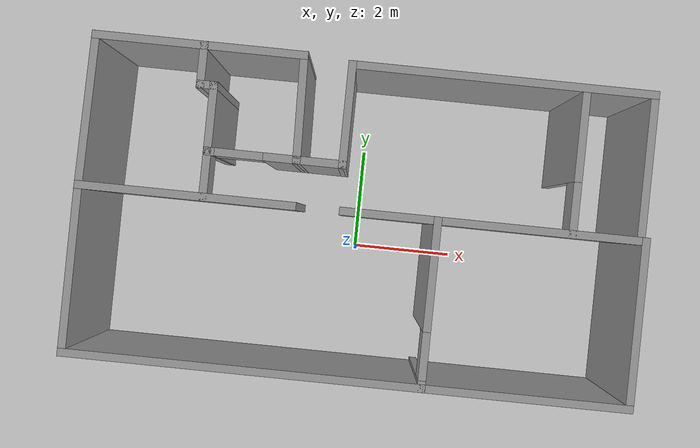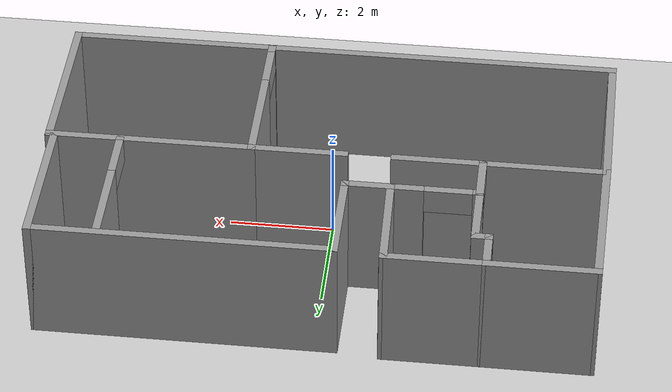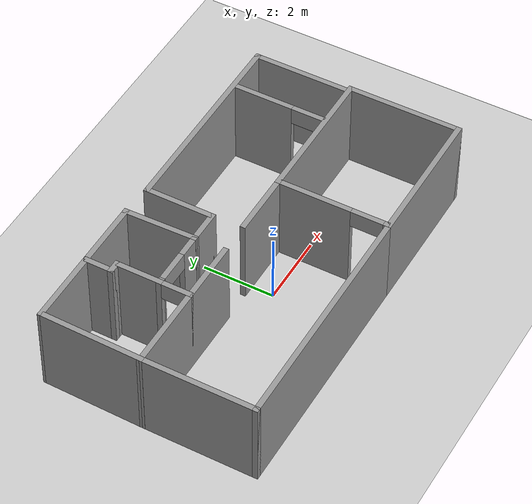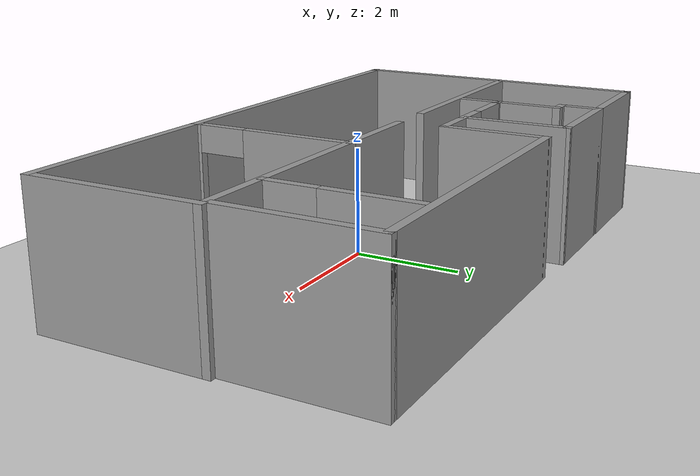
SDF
<sdf version="1.7">
 <world name="default">
  <light name="sun" type="directional">
   <pose>0 0 10 0 -0 0</pose>
   <diffuse>0.8 0.8 0.8 1</diffuse>
   <specular>0.2 0.2 0.2 1</specular>
   <attenuation>
    <range>1000</range>
    <constant>0.9</constant>
    <linear>0.01</linear>
    <quadratic>0.001</quadratic>
   </attenuation>
   <direction>-0.5 0.1 -0.9</direction>
   <spot><inner_angle>0</inner_angle><outer_angle>0</outer_angle><falloff>0</falloff></spot>
  </light>
  <model name="ground_plane">
   <static>1</static>
   <link name="link">
    <collision name="collision">
     <geometry><plane><normal>0 0 1</normal><size>100 100</size></plane></geometry>
     <surface>
      <contact><collide_bitmask>65535</collide_bitmask></contact>
      <friction><ode><mu>100</mu><mu2>50</mu2></ode></friction>
     </surface>
    </collision>
    <visual name="visual">
     <cast_shadows>0</cast_shadows>
     <geometry><plane><normal>0 0 1</normal><size>100 100</size></plane></geometry>
     <material>
      <script><uri>file://media/materials/scripts/gazebo.material</uri><name>Gazebo/Grey</name></script>
     </material>
    </visual>
   </link>
  </model>
  <gravity>0 0 -9.8</gravity>
  <magnetic_field>6e-06 2.3e-05 -4.2e-05</magnetic_field>
  <atmosphere type="adiabatic"/>
  <physics type="ode">
   <max_step_size>0.001</max_step_size>
   <real_time_factor>1</real_time_factor>
   <real_time_update_rate>1000</real_time_update_rate>
  </physics>
  <scene><ambient>0.4 0.4 0.4 1</ambient><background>0.7 0.7 0.7 1</background><shadows>1</shadows></scene>
  <spherical_coordinates>
   <surface_model>EARTH_WGS84</surface_model>
   <latitude_deg>0</latitude_deg>
   <longitude_deg>0</longitude_deg>
   <elevation>0</elevation>
   <heading_deg>0</heading_deg>
  </spherical_coordinates>
  <model name="living_room">
   <pose>0.066661 0.820114 0 0 -0 0</pose>
   <link name="Wall_10">
    <collision name="Wall_10_Collision">
     <geometry><box><size>4.1 0.15 2.5</size></box></geometry>
     <pose>0 0 1.25 0 -0 0</pose>
    </collision>
    <visual name="Wall_10_Visual">
     <pose>0 0 1.25 0 -0 0</pose>
     <geometry><box><size>4.1 0.15 2.5</size></box></geometry>
     <material>
      <script><uri>file://media/materials/scripts/gazebo.material</uri><name>Gazebo/Grey</name></script>
      <ambient>1 1 1 1</ambient>
     </material>
     <meta><layer>0</layer></meta>
    </visual>
    <pose>-3.27433 -0.1475 0 0 -0 0</pose>
   </link>
   <link name="Wall_17">
    <collision name="Wall_17_Collision">
     <geometry><box><size>6.8 0.15 2.5</size></box></geometry>
     <pose>0 0 1.25 0 -0 0</pose>
    </collision>
    <visual name="Wall_17_Visual">
     <pose>0 0 1.25 0 -0 0</pose>
     <geometry><box><size>6.8 0.15 2.5</size></box></geometry>
     <material>
      <script><uri>file://media/materials/scripts/gazebo.material</uri><name>Gazebo/Grey</name></script>
      <ambient>1 1 1 1</ambient>
     </material>
     <meta><layer>0</layer></meta>
    </visual>
    <pose>-1.92433 -3.2475 0 0 -0 0</pose>
   </link>
   <link name="Wall_20">
    <pose>1.40067 -1.6975 0 0 -0 1.5708</pose>
    <visual name="Wall_20_Visual_0">
     <pose>-1.5175 0 1.25 0 -0 0</pose>
     <geometry><box><size>0.215 0.15 2.5</size></box></geometry>
     <material>
      <script><uri>file://media/materials/scripts/gazebo.material</uri><name>Gazebo/Grey</name></script>
      <ambient>1 1 1 1</ambient>
     </material>
     <meta><layer>0</layer></meta>
    </visual>
    <collision name="Wall_20_Collision_0">
     <geometry><box><size>0.215 0.15 2.5</size></box></geometry>
     <pose>-1.5175 0 1.25 0 -0 0</pose>
    </collision>
    <visual name="Wall_20_Visual_1">
     <pose>0.5575 0 1.25 0 -0 0</pose>
     <geometry><box><size>2.135 0.15 2.5</size></box></geometry>
     <material>
      <script><uri>file://media/materials/scripts/gazebo.material</uri><name>Gazebo/Grey</name></script>
      <ambient>1 1 1 1</ambient>
     </material>
     <meta><layer>0</layer></meta>
    </visual>
    <collision name="Wall_20_Collision_1">
     <geometry><box><size>2.135 0.15 2.5</size></box></geometry>
     <pose>0.5575 0 1.25 0 -0 0</pose>
    </collision>
    <visual name="Wall_20_Visual_2">
     <pose>-0.96 0 2.25 0 -0 0</pose>
     <geometry><box><size>0.9 0.15 0.5</size></box></geometry>
     <material>
      <script><uri>file://media/materials/scripts/gazebo.material</uri><name>Gazebo/Grey</name></script>
      <ambient>1 1 1 1</ambient>
     </material>
     <meta><layer>0</layer></meta>
    </visual>
    <collision name="Wall_20_Collision_2">
     <geometry><box><size>0.9 0.15 0.5</size></box></geometry>
     <pose>-0.96 0 2.25 0 -0 0</pose>
    </collision>
   </link>
   <link name="Wall_21">
    <collision name="Wall_21_Collision">
     <geometry><box><size>1.9 0.15 2.5</size></box></geometry>
     <pose>0 0 1.25 0 -0 0</pose>
    </collision>
    <visual name="Wall_21_Visual">
     <pose>0 0 1.25 0 -0 0</pose>
     <geometry><box><size>1.9 0.15 2.5</size></box></geometry>
     <material>
      <script><uri>file://media/materials/scripts/gazebo.material</uri><name>Gazebo/Grey</name></script>
      <ambient>1 1 1 1</ambient>
     </material>
     <meta><layer>0</layer></meta>
    </visual>
    <pose>0.525668 -0.1475 0 0 -0 3.14159</pose>
   </link>
   <link name="Wall_23">
    <collision name="Wall_23_Collision">
     <geometry><box><size>4 0.15 2.5</size></box></geometry>
     <pose>0 0 1.25 0 -0 0</pose>
    </collision>
    <visual name="Wall_23_Visual">
     <pose>0 0 1.25 0 -0 0</pose>
     <geometry><box><size>4 0.15 2.5</size></box></geometry>
     <material>
      <script><uri>file://media/materials/scripts/gazebo.material</uri><name>Gazebo/Grey</name></script>
      <ambient>1 1 1 1</ambient>
     </material>
     <meta><layer>0</layer></meta>
    </visual>
    <pose>3.32567 -3.2475 0 0 -0 0</pose>
   </link>
   <link name="Wall_24">
    <collision name="Wall_24_Collision">
     <geometry><box><size>3.25 0.15 2.5</size></box></geometry>
     <pose>0 0 1.25 0 -0 0</pose>
    </collision>
    <visual name="Wall_24_Visual">
     <pose>0 0 1.25 0 -0 0</pose>
     <geometry><box><size>3.25 0.15 2.5</size></box></geometry>
     <material>
      <script><uri>file://media/materials/scripts/gazebo.material</uri><name>Gazebo/Grey</name></script>
      <ambient>1 1 1 1</ambient>
     </material>
     <meta><layer>0</layer></meta>
    </visual>
    <pose>5.25067 -1.6975 0 0 -0 1.5708</pose>
   </link>
   <link name="Wall_25">
    <collision name="Wall_25_Collision">
     <geometry><box><size>4 0.15 2.5</size></box></geometry>
     <pose>0 0 1.25 0 -0 0</pose>
    </collision>
    <visual name="Wall_25_Visual">
     <pose>0 0 1.25 0 -0 0</pose>
     <geometry><box><size>4 0.15 2.5</size></box></geometry>
     <material>
      <script><uri>file://media/materials/scripts/gazebo.material</uri><name>Gazebo/Grey</name></script>
      <ambient>1 1 1 1</ambient>
     </material>
     <meta><layer>0</layer></meta>
    </visual>
    <pose>3.32567 -0.1475 0 0 -0 3.14159</pose>
   </link>
   <link name="Wall_33">
    <pose>-2.12433 0.7025 0 0 -0 3.14159</pose>
    <visual name="Wall_33_Visual_0">
     <pose>-0.551716 0 1.25 0 -0 0</pose>
     <geometry><box><size>0.696567 0.15 2.5</size></box></geometry>
     <material>
      <script><uri>file://media/materials/scripts/gazebo.material</uri><name>Gazebo/Grey</name></script>
      <ambient>1 1 1 1</ambient>
     </material>
     <meta><layer>0</layer></meta>
    </visual>
    <collision name="Wall_33_Collision_0">
     <geometry><box><size>0.696567 0.15 2.5</size></box></geometry>
     <pose>-0.551716 0 1.25 0 -0 0</pose>
    </collision>
    <visual name="Wall_33_Visual_1">
     <pose>0.798284 0 1.25 0 -0 0</pose>
     <geometry><box><size>0.203433 0.15 2.5</size></box></geometry>
     <material>
      <script><uri>file://media/materials/scripts/gazebo.material</uri><name>Gazebo/Grey</name></script>
      <ambient>1 1 1 1</ambient>
     </material>
     <meta><layer>0</layer></meta>
    </visual>
    <collision name="Wall_33_Collision_1">
     <geometry><box><size>0.203433 0.15 2.5</size></box></geometry>
     <pose>0.798284 0 1.25 0 -0 0</pose>
    </collision>
    <visual name="Wall_33_Visual_2">
     <pose>0.246567 0 2.25 0 -0 0</pose>
     <geometry><box><size>0.9 0.15 0.5</size></box></geometry>
     <material>
      <script><uri>file://media/materials/scripts/gazebo.material</uri><name>Gazebo/Grey</name></script>
      <ambient>1 1 1 1</ambient>
     </material>
     <meta><layer>0</layer></meta>
    </visual>
    <collision name="Wall_33_Collision_2">
     <geometry><box><size>0.9 0.15 0.5</size></box></geometry>
     <pose>0.246567 0 2.25 0 -0 0</pose>
    </collision>
   </link>
   <link name="Wall_35">
    <pose>-2.94933 0.2775 0 0 -0 -1.5708</pose>
    <visual name="Wall_35_Visual_0">
     <pose>-0.477932 0 1.25 0 -0 0</pose>
     <geometry><box><size>0.044137 0.15 2.5</size></box></geometry>
     <material>
      <script><uri>file://media/materials/scripts/gazebo.material</uri><name>Gazebo/Grey</name></script>
      <ambient>1 1 1 1</ambient>
     </material>
     <meta><layer>0</layer></meta>
    </visual>
    <collision name="Wall_35_Collision_0">
     <geometry><box><size>0.044137 0.15 2.5</size></box></geometry>
     <pose>-0.477932 0 1.25 0 -0 0</pose>
    </collision>
    <visual name="Wall_35_Visual_1">
     <pose>0.472068 0 1.25 0 -0 0</pose>
     <geometry><box><size>0.055863 0.15 2.5</size></box></geometry>
     <material>
      <script><uri>file://media/materials/scripts/gazebo.material</uri><name>Gazebo/Grey</name></script>
      <ambient>1 1 1 1</ambient>
     </material>
     <meta><layer>0</layer></meta>
    </visual>
    <collision name="Wall_35_Collision_1">
     <geometry><box><size>0.055863 0.15 2.5</size></box></geometry>
     <pose>0.472068 0 1.25 0 -0 0</pose>
    </collision>
    <visual name="Wall_35_Visual_2">
     <pose>-0.005863 0 2.25 0 -0 0</pose>
     <geometry><box><size>0.9 0.15 0.5</size></box></geometry>
     <material>
      <script><uri>file://media/materials/scripts/gazebo.material</uri><name>Gazebo/Grey</name></script>
      <ambient>1 1 1 1</ambient>
     </material>
     <meta><layer>0</layer></meta>
    </visual>
    <collision name="Wall_35_Collision_2">
     <geometry><box><size>0.9 0.15 0.5</size></box></geometry>
     <pose>-0.005863 0 2.25 0 -0 0</pose>
    </collision>
   </link>
   <link name="Wall_38">
    <collision name="Wall_38_Collision">
     <geometry><box><size>1.36 0.15 2.5</size></box></geometry>
     <pose>0 0 1.25 0 -0 0</pose>
    </collision>
    <visual name="Wall_38_Visual">
     <pose>0 0 1.25 0 -0 0</pose>
     <geometry><box><size>1.36 0.15 2.5</size></box></geometry>
     <material>
      <script><uri>file://media/materials/scripts/gazebo.material</uri><name>Gazebo/Grey</name></script>
      <ambient>1 1 1 1</ambient>
     </material>
     <meta><layer>0</layer></meta>
    </visual>
    <pose>-2.94933 1.3075 0 0 -0 1.5708</pose>
   </link>
   <link name="Wall_42">
    <collision name="Wall_42_Collision">
     <geometry><box><size>0.4 0.15 2.5</size></box></geometry>
     <pose>0 0 1.25 0 -0 0</pose>
    </collision>
    <visual name="Wall_42_Visual">
     <pose>0 0 1.25 0 -0 0</pose>
     <geometry><box><size>0.4 0.15 2.5</size></box></geometry>
     <material>
      <script><uri>file://media/materials/scripts/gazebo.material</uri><name>Gazebo/Grey</name></script>
      <ambient>1 1 1 1</ambient>
     </material>
     <meta><layer>0</layer></meta>
    </visual>
    <pose>-3.07433 1.9125 0 0 -0 3.14159</pose>
   </link>
   <link name="Wall_45">
    <collision name="Wall_45_Collision">
     <geometry><box><size>0.87 0.15 2.5</size></box></geometry>
     <pose>0 0 1.25 0 -0 0</pose>
    </collision>
    <visual name="Wall_45_Visual">
     <pose>0 0 1.25 0 -0 0</pose>
     <geometry><box><size>0.87 0.15 2.5</size></box></geometry>
     <material>
      <script><uri>file://media/materials/scripts/gazebo.material</uri><name>Gazebo/Grey</name></script>
      <ambient>1 1 1 1</ambient>
     </material>
     <meta><layer>0</layer></meta>
    </visual>
    <pose>-3.19933 2.2725 0 0 -0 1.5708</pose>
   </link>
   <link name="Wall_52">
    <collision name="Wall_52_Collision">
     <geometry><box><size>2.15 0.15 2.5</size></box></geometry>
     <pose>0 0 1.25 0 -0 0</pose>
    </collision>
    <visual name="Wall_52_Visual">
     <pose>0 0 1.25 0 -0 0</pose>
     <geometry><box><size>2.15 0.15 2.5</size></box></geometry>
     <material>
      <script><uri>file://media/materials/scripts/gazebo.material</uri><name>Gazebo/Grey</name></script>
      <ambient>1 1 1 1</ambient>
     </material>
     <meta><layer>0</layer></meta>
    </visual>
    <pose>-4.19933 2.6325 0 0 -0 3.14159</pose>
   </link>
   <link name="Wall_54">
    <collision name="Wall_54_Collision">
     <geometry><box><size>2.93045 0.15 2.5</size></box></geometry>
     <pose>0 0 1.25 0 -0 0</pose>
    </collision>
    <visual name="Wall_54_Visual">
     <pose>0 0 1.25 0 -0 0</pose>
     <geometry><box><size>2.93045 0.15 2.5</size></box></geometry>
     <material>
      <script><uri>file://media/materials/scripts/gazebo.material</uri><name>Gazebo/Grey</name></script>
      <ambient>1 1 1 1</ambient>
     </material>
     <meta><layer>0</layer></meta>
    </visual>
    <pose>-5.22433 1.2425 0 0 -0 -1.58878</pose>
   </link>
   <link name="Wall_60">
    <collision name="Wall_60_Collision">
     <geometry><box><size>2 0.15 2.5</size></box></geometry>
     <pose>0 0 1.25 0 -0 0</pose>
    </collision>
    <visual name="Wall_60_Visual">
     <pose>0 0 1.25 0 -0 0</pose>
     <geometry><box><size>2 0.15 2.5</size></box></geometry>
     <material>
      <script><uri>file://media/materials/scripts/gazebo.material</uri><name>Gazebo/Grey</name></script>
      <ambient>1 1 1 1</ambient>
     </material>
     <meta><layer>0</layer></meta>
    </visual>
    <pose>-2.27433 2.6325 0 0 -0 0</pose>
   </link>
   <link name="Wall_61">
    <collision name="Wall_61_Collision">
     <geometry><box><size>2.08065 0.15 2.5</size></box></geometry>
     <pose>0 0 1.25 0 -0 0</pose>
    </collision>
    <visual name="Wall_61_Visual">
     <pose>0 0 1.25 0 -0 0</pose>
     <geometry><box><size>2.08065 0.15 2.5</size></box></geometry>
     <material>
      <script><uri>file://media/materials/scripts/gazebo.material</uri><name>Gazebo/Grey</name></script>
      <ambient>1 1 1 1</ambient>
     </material>
     <meta><layer>0</layer></meta>
    </visual>
    <pose>-1.32433 1.6675 0 0 -0 -1.54489</pose>
   </link>
   <link name="Wall_63">
    <collision name="Wall_63_Collision">
     <geometry><box><size>1 0.15 2.5</size></box></geometry>
     <pose>0 0 1.25 0 -0 0</pose>
    </collision>
    <visual name="Wall_63_Visual">
     <pose>0 0 1.25 0 -0 0</pose>
     <geometry><box><size>1 0.15 2.5</size></box></geometry>
     <material>
      <script><uri>file://media/materials/scripts/gazebo.material</uri><name>Gazebo/Grey</name></script>
      <ambient>1 1 1 1</ambient>
     </material>
     <meta><layer>0</layer></meta>
    </visual>
    <pose>-0.874332 0.7025 0 0 -0 0</pose>
   </link>
   <link name="Wall_64">
    <collision name="Wall_64_Collision">
     <geometry><box><size>2 0.15 2.5</size></box></geometry>
     <pose>0 0 1.25 0 -0 0</pose>
    </collision>
    <visual name="Wall_64_Visual">
     <pose>0 0 1.25 0 -0 0</pose>
     <geometry><box><size>2 0.15 2.5</size></box></geometry>
     <material>
      <script><uri>file://media/materials/scripts/gazebo.material</uri><name>Gazebo/Grey</name></script>
      <ambient>1 1 1 1</ambient>
     </material>
     <meta><layer>0</layer></meta>
    </visual>
    <pose>-0.449332 1.6275 0 0 -0 1.5708</pose>
   </link>
   <link name="Wall_65">
    <collision name="Wall_65_Collision">
     <geometry><box><size>5.75 0.15 2.5</size></box></geometry>
     <pose>0 0 1.25 0 -0 0</pose>
    </collision>
    <visual name="Wall_65_Visual">
     <pose>0 0 1.25 0 -0 0</pose>
     <geometry><box><size>5.75 0.15 2.5</size></box></geometry>
     <material>
      <script><uri>file://media/materials/scripts/gazebo.material</uri><name>Gazebo/Grey</name></script>
      <ambient>1 1 1 1</ambient>
     </material>
     <meta><layer>0</layer></meta>
    </visual>
    <pose>2.35067 2.5525 0 0 -0 0</pose>
   </link>
   <link name="Wall_66">
    <collision name="Wall_66_Collision">
     <geometry><box><size>2.75 0.15 2.5</size></box></geometry>
     <pose>0 0 1.25 0 -0 0</pose>
    </collision>
    <visual name="Wall_66_Visual">
     <pose>0 0 1.25 0 -0 0</pose>
     <geometry><box><size>2.75 0.15 2.5</size></box></geometry>
     <material>
      <script><uri>file://media/materials/scripts/gazebo.material</uri><name>Gazebo/Grey</name></script>
      <ambient>1 1 1 1</ambient>
     </material>
     <meta><layer>0</layer></meta>
    </visual>
    <pose>5.15067 1.2525 0 0 -0 -1.5708</pose>
   </link>
   <link name="Wall_68">
    <pose>3.89257 1.1921 0 0 -0 -1.5708</pose>
    <visual name="Wall_68_Visual_0">
     <pose>-0.499039 0 1.25 0 -0 0</pose>
     <geometry><box><size>1.75192 0.15 2.5</size></box></geometry>
     <material>
      <script><uri>file://media/materials/scripts/gazebo.material</uri><name>Gazebo/Grey</name></script>
      <ambient>1 1 1 1</ambient>
     </material>
     <meta><layer>0</layer></meta>
    </visual>
    <collision name="Wall_68_Collision_0">
     <geometry><box><size>1.75192 0.15 2.5</size></box></geometry>
     <pose>-0.499039 0 1.25 0 -0 0</pose>
    </collision>
    <visual name="Wall_68_Visual_1">
     <pose>1.32596 0 1.25 0 -0 0</pose>
     <geometry><box><size>0.098078 0.15 2.5</size></box></geometry>
     <material>
      <script><uri>file://media/materials/scripts/gazebo.material</uri><name>Gazebo/Grey</name></script>
      <ambient>1 1 1 1</ambient>
     </material>
     <meta><layer>0</layer></meta>
    </visual>
    <collision name="Wall_68_Collision_1">
     <geometry><box><size>0.098078 0.15 2.5</size></box></geometry>
     <pose>1.32596 0 1.25 0 -0 0</pose>
    </collision>
    <visual name="Wall_68_Visual_2">
     <pose>0.826922 0 2.25 0 -0 0</pose>
     <geometry><box><size>0.9 0.15 0.5</size></box></geometry>
     <material>
      <script><uri>file://media/materials/scripts/gazebo.material</uri><name>Gazebo/Grey</name></script>
      <ambient>1 1 1 1</ambient>
     </material>
     <meta><layer>0</layer></meta>
    </visual>
    <collision name="Wall_68_Collision_2">
     <geometry><box><size>0.9 0.15 0.5</size></box></geometry>
     <pose>0.826922 0 2.25 0 -0 0</pose>
    </collision>
   </link>
   <link name="Wall_9">
    <collision name="Wall_9_Collision">
     <geometry><box><size>3.25 0.15 2.5</size></box></geometry>
     <pose>0 0 1.25 0 -0 0</pose>
    </collision>
    <visual name="Wall_9_Visual">
     <pose>0 0 1.25 0 -0 0</pose>
     <geometry><box><size>3.25 0.15 2.5</size></box></geometry>
     <material>
      <script><uri>file://media/materials/scripts/gazebo.material</uri><name>Gazebo/Grey</name></script>
      <ambient>1 1 1 1</ambient>
     </material>
     <meta><layer>0</layer></meta>
    </visual>
    <pose>-5.24933 -1.6975 0 0 -0 1.5708</pose>
   </link>
   <static>1</static>
  </model>
 </world>
</sdf>
